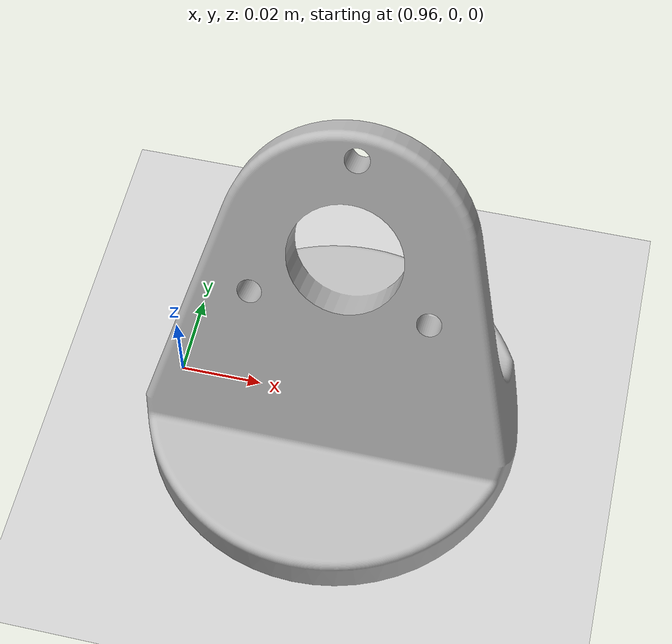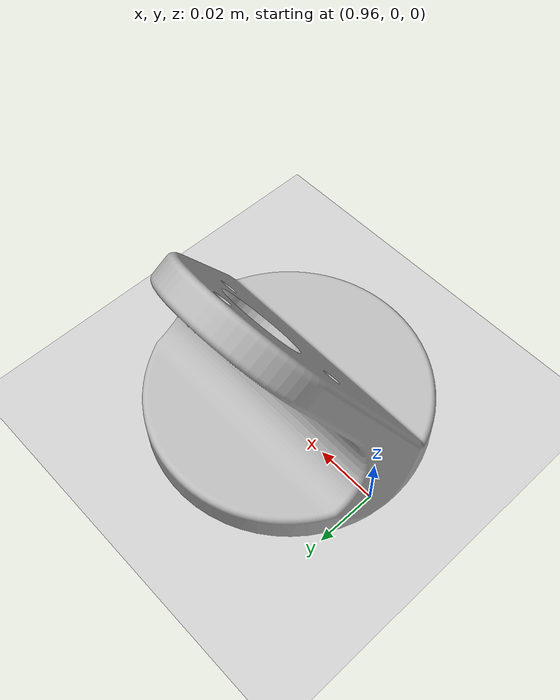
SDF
<?xml version="1.0" ?>
<sdf version="1.5">
    <world name="default">

        <physics type="ode">
            <max_step_size>0.001</max_step_size>
            <real_time_factor>1</real_time_factor>
            <real_time_update_rate>1000</real_time_update_rate>
            <gravity>0 0 -9.81</gravity>
            <ode>
                <solver>
                    <type>quick</type>
                    <iters>30</iters>
                    <sor>1.3</sor>
                </solver>
                <constraints>
                    <cfm>0.0</cfm>
                    <erp>0.2</erp>
                    <contact_max_correcting_vel>10.0</contact_max_correcting_vel>
                    <contact_surface_layer>0.001</contact_surface_layer>
                </constraints>
            </ode>
        </physics>

        <scene>
        <sky>
            <clouds>
                <speed>12</speed>
            </clouds>
        </sky>
        </scene>
        <!-- A global light source -->
        <include>
            <uri>model://sun</uri>
        </include>
        <!-- A ground plane -->
        <include>
            <uri>model://ground_plane</uri>
        </include>
        <!-- environment blocks, obstacles or stairs -->
        <include>
	  <uri>model://my_model</uri>
	  <name>my_model_instance</name>
	  <pose>1 0 0 0 0 0</pose>
	</include>

    </world>
</sdf>

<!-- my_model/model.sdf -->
<sdf version="1.4">
  <model name='my_model'>
    <link name='my_link'>
      <inertial>
        <mass>1.0</mass>
        <inertia>
          <ixx>0.1</ixx>
          <ixy>0.0</ixy>
	  <ixz>0.0</ixz>
          <iyy>0.1</iyy>
          <iyz>0.0</iyz>
          <izz>0.1</izz>
        </inertia>
      </inertial>
      <collision name='my_collision'>
	<pose> -0.1 0.04 0 1.5708 0 0</pose>
        <geometry>
          <mesh>
            <uri>model://my_model/my_mesh.stl</uri>
            <scale>0.001 0.001 0.001</scale>
          </mesh>
        </geometry>
      </collision>
      <visual name='my_visual'>
	<pose> -0.1 0.04 0 1.5708 0 0</pose>
        <geometry>
          <mesh>
            <uri>model://my_model/my_mesh.stl</uri>
            <scale>0.001 0.001 0.001</scale>
          </mesh>
        </geometry>
      </visual>
    </link>
  </model>
</sdf>
